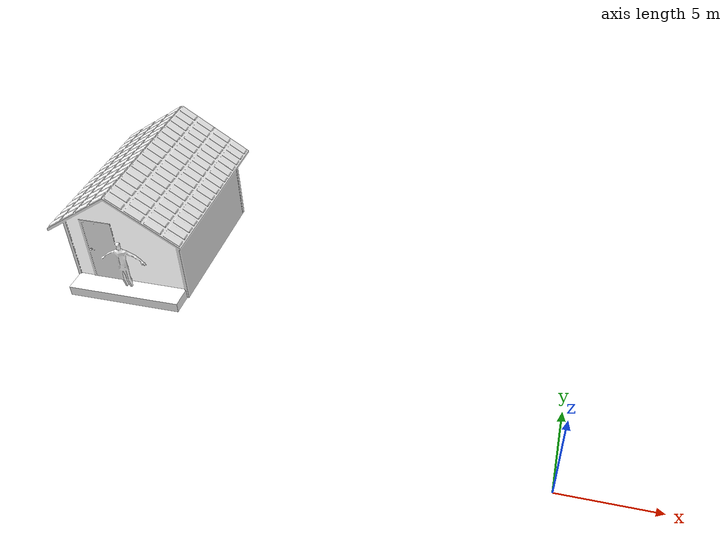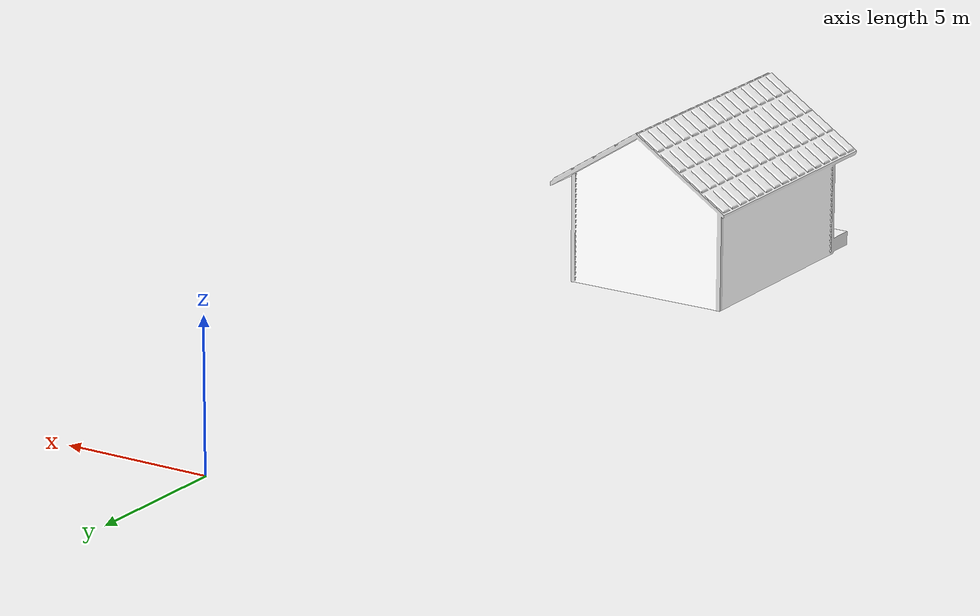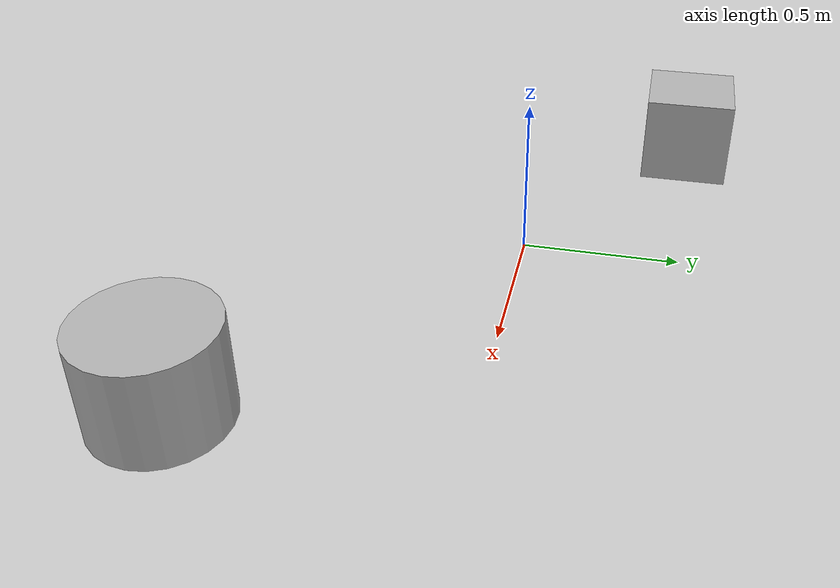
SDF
<sdf version="1.10">
 <world name="empty">
  <physics name="1ms" type="ignored">
   <max_step_size>0.001</max_step_size>
   <real_time_factor>1</real_time_factor>
   <real_time_update_rate>1000</real_time_update_rate>
  </physics>
  <plugin name="gz::sim::systems::Physics" filename="gz-sim-physics-system"/>
  <plugin name="gz::sim::systems::UserCommands" filename="gz-sim-user-commands-system"/>
  <plugin name="gz::sim::systems::SceneBroadcaster" filename="gz-sim-scene-broadcaster-system"/>
  <plugin name="gz::sim::systems::Contact" filename="gz-sim-contact-system"/>
  <gravity>0 0 -9.8000000000000007</gravity>
  <magnetic_field>5.5644999999999998e-06 2.2875799999999999e-05 -4.2388400000000002e-05</magnetic_field>
  <atmosphere type="adiabatic"/>
  <scene>
   <ambient>0.400000006 0.400000006 0.400000006 1</ambient>
   <background>0.699999988 0.699999988 0.699999988 1</background>
   <shadows>true</shadows>
  </scene>
  <plugin name="gz::sim::systems::TriggeredPublisher" filename="gz-sim-triggered-publisher-system">
   <input type="gz.msgs.Int32" topic="/keyboard/keypress"><match field="data">16777234</match></input>
   <output type="gz.msgs.Twist" topic="/model/x3/cmd_vel">linear: {y: 1.0}</output>
  </plugin>
  <plugin name="gz::sim::systems::TriggeredPublisher" filename="gz-sim-triggered-publisher-system">
   <input type="gz.msgs.Int32" topic="/keyboard/keypress"><match field="data">16777235</match></input>
   <output type="gz.msgs.Twist" topic="/model/x3/cmd_vel">linear: {x: 1.0}</output>
  </plugin>
  <plugin name="gz::sim::systems::TriggeredPublisher" filename="gz-sim-triggered-publisher-system">
   <input type="gz.msgs.Int32" topic="/keyboard/keypress"><match field="data">16777236</match></input>
   <output type="gz.msgs.Twist" topic="/model/x3/cmd_vel">linear: {y: -1.0}</output>
  </plugin>
  <plugin name="gz::sim::systems::TriggeredPublisher" filename="gz-sim-triggered-publisher-system">
   <input type="gz.msgs.Int32" topic="/keyboard/keypress"><match field="data">16777237</match></input>
   <output type="gz.msgs.Twist" topic="/model/x3/cmd_vel">linear: {x: -1.0}</output>
  </plugin>
  <model name="ground_plane">
   <static>true</static>
   <link name="link">
    <collision name="collision">
     <geometry><plane><normal>0 0 1</normal><size>100 100</size></plane></geometry>
    </collision>
    <visual name="visual">
     <geometry><plane><normal>0 0 1</normal><size>100 100</size></plane></geometry>
     <material>
      <ambient>0.800000012 0.800000012 0.800000012 1</ambient>
      <diffuse>0.800000012 0.800000012 0.800000012 1</diffuse>
      <specular>0.800000012 0.800000012 0.800000012 1</specular>
     </material>
    </visual>
    <inertial>
     <mass>1</mass>
     <inertia><ixx>1</ixx><ixy>0</ixy><ixz>0</ixz><iyy>1</iyy><iyz>0</iyz><izz>1</izz></inertia>
    </inertial>
   </link>
  </model>
  <model name="cylinder">
   <pose>1 -0.80000000000000004 0.14999999999999999 0 0 0</pose>
   <link name="cylinder_link">
    <inertial>
     <inertia>
      <ixx>0.14499999999999999</ixx>
      <ixy>0</ixy>
      <ixz>0</ixz>
      <iyy>0.14499999999999999</iyy>
      <iyz>0</iyz>
      <izz>0.125</izz>
     </inertia>
     <mass>1</mass>
    </inertial>
    <collision name="cylinder_collision">
     <geometry>
      <cylinder><radius>0.20000000000000001</radius><length>0.29999999999999999</length></cylinder>
     </geometry>
    </collision>
    <visual name="cylinder_visual">
     <geometry>
      <cylinder><radius>0.20000000000000001</radius><length>0.29999999999999999</length></cylinder>
     </geometry>
     <material>
      <ambient>0.300000012 0.300000012 0.300000012 1</ambient>
      <diffuse>0.699999988 0.699999988 0.699999988 1</diffuse>
      <specular>1 1 1 1</specular>
     </material>
    </visual>
   </link>
   <static>false</static>
  </model>
  <model name="box">
   <pose>-0.69999999999999996 0.5 0.14999999999999999 0 0 0</pose>
   <link name="box_link">
    <inertial>
     <inertia><ixx>0.16666</ixx><ixy>0</ixy><ixz>0</ixz><iyy>0.16666</iyy><iyz>0</iyz><izz>0.16666</izz></inertia>
     <mass>1</mass>
    </inertial>
    <collision name="box_collision">
     <geometry><box><size>0.29999999999999999 0.29999999999999999 0.29999999999999999</size></box></geometry>
    </collision>
    <visual name="box_visual">
     <geometry><box><size>0.29999999999999999 0.29999999999999999 0.29999999999999999</size></box></geometry>
     <material>
      <ambient>0.300000012 0.300000012 0.300000012 1</ambient>
      <diffuse>0.699999988 0.699999988 0.699999988 1</diffuse>
      <specular>1 1 1 1</specular>
     </material>
    </visual>
   </link>
   <static>false</static>
  </model>
  <include>
   <uri>file:///home/cirl/ros_gz_project_template-main/fws_robot_sim/worlds//terrain_1</uri>
   <name>terrain_1</name>
   <pose>0 0 2 0 0 0</pose>
  </include>
  <include>
   <uri>file:///home/cirl/ros_gz_project_template-main/fws_robot_sim/worlds//house_1</uri>
   <name>house_1</name>
   <pose>-18.030239105224609 0 10 0 0 0</pose>
  </include>
  <light name="sun" type="directional">
   <pose>0 0 10 0 0 0</pose>
   <intensity>1</intensity>
   <direction>-0.5 0.10000000000000001 -0.90000000000000002</direction>
   <diffuse>0.800000012 0.800000012 0.800000012 1</diffuse>
   <specular>0.200000003 0.200000003 0.200000003 1</specular>
   <attenuation>
    <range>1000</range>
    <linear>0.01</linear>
    <constant>0.90000000000000002</constant>
    <quadratic>0.001</quadratic>
   </attenuation>
   <spot><inner_angle>0</inner_angle><outer_angle>0</outer_angle><falloff>0</falloff></spot>
  </light>
 </world>
</sdf>

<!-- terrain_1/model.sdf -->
<sdf version="1.6">
  <model name="terrain_1">
    <pose>0 0 0 0 0 0</pose>
    <static>true</static>
    <link name="body">
      <visual name="visual">
        <geometry>
          <mesh><uri>model://terrain_1/media/terrain_1.dae</uri></mesh>
        </geometry>
        <material>
          <ambient>1 1 1 1</ambient>
          <diffuse>1 1 1 1</diffuse>
          <specular>0.1 0.1 0.1 1</specular>
          <pbr>
            <metal>
              <albedo_map>model://terrain_1/media/Textures/Grass.png</albedo_map>
            </metal>
          </pbr>
        </material>
      </visual>
      <collision name="collision">
        <geometry>
          <mesh><uri>model://terrain_1/media/terrain_1.dae</uri></mesh>
        </geometry>
      </collision>
    </link>
  </model>
</sdf>

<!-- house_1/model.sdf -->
<sdf version="1.6">
  <model name="house_1">
    <pose>0 0 0 0 0 0</pose>
    <static>true</static>
    <link name="body">
      <visual name="visual">
        <geometry>
          <mesh><uri>model://house_1/media/house.dae</uri></mesh>
        </geometry>
        <material>
          <ambient>1 1 1 1</ambient>
          <diffuse>1 1 1 1</diffuse>
          <specular>0.1 0.1 0.1 1</specular>
          <pbr>
            <metal>
              <albedo_map>model://house_1/media/Textures/house.png</albedo_map>
            </metal>
          </pbr>
        </material>
      </visual>
      <collision name="collision">
        <geometry>
          <mesh><uri>model://house_1/media/house.dae</uri></mesh>
        </geometry>
      </collision>
    </link>
  </model>
</sdf>
